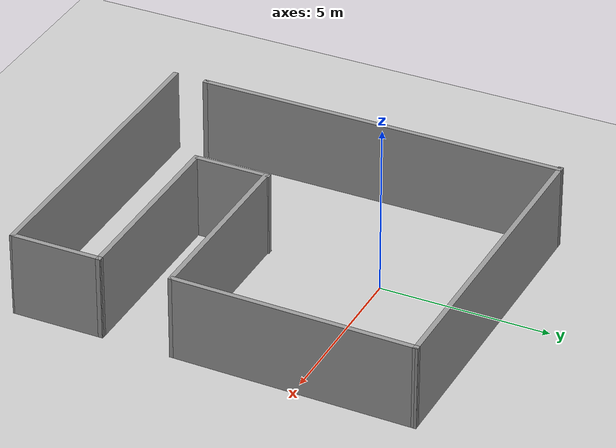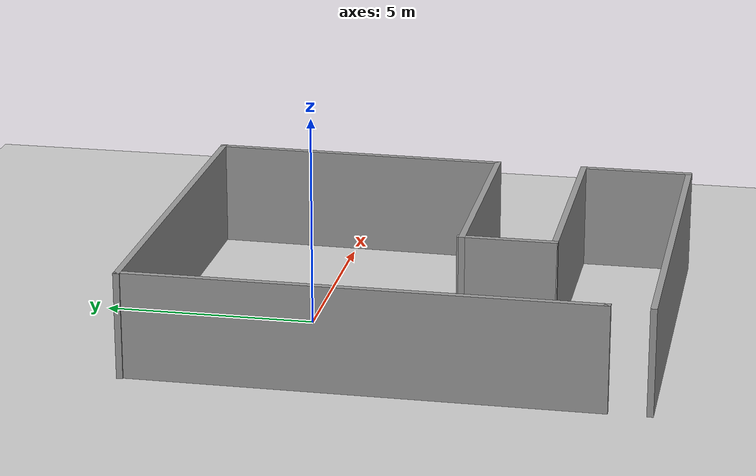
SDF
<sdf version="1.7">
 <world name="default">
  <model name="ground_plane">
   <static>1</static>
   <link name="link">
    <collision name="collision">
     <geometry><plane><normal>0 0 1</normal><size>100 100</size></plane></geometry>
     <surface><friction><ode><mu>100</mu><mu2>50</mu2></ode></friction></surface>
    </collision>
    <visual name="visual">
     <cast_shadows>0</cast_shadows>
     <geometry><plane><normal>0 0 1</normal><size>100 100</size></plane></geometry>
     <material>
      <script><uri>file://media/materials/scripts/gazebo.material</uri><name>Gazebo/Grey</name></script>
     </material>
    </visual>
   </link>
  </model>
  <light name="sun" type="directional">
   <pose>0 0 10 0 -0 0</pose>
   <diffuse>0.8 0.8 0.8 1</diffuse>
   <specular>0.2 0.2 0.2 1</specular>
   <attenuation>
    <range>1000</range>
    <constant>0.9</constant>
    <linear>0.01</linear>
    <quadratic>0.001</quadratic>
   </attenuation>
   <direction>-0.5 0.1 -0.9</direction>
   <spot><inner_angle>0</inner_angle><outer_angle>0</outer_angle><falloff>0</falloff></spot>
  </light>
  <scene><shadows>0</shadows><ambient>0.4 0.4 0.4 1</ambient><background>0.7 0.7 0.7 1</background></scene>
  <physics type="ode">
   <real_time_update_rate>1000</real_time_update_rate>
   <max_step_size>0.001</max_step_size>
   <real_time_factor>1</real_time_factor>
   <ode>
    <solver>
     <type>quick</type>
     <iters>150</iters>
     <precon_iters>0</precon_iters>
     <sor>1.4</sor>
     <use_dynamic_moi_rescaling>1</use_dynamic_moi_rescaling>
    </solver>
    <constraints>
     <cfm>1e-05</cfm>
     <erp>0.2</erp>
     <contact_max_correcting_vel>2000</contact_max_correcting_vel>
     <contact_surface_layer>0.01</contact_surface_layer>
    </constraints>
   </ode>
  </physics>
  <gravity>0 0 -9.8</gravity>
  <magnetic_field>6e-06 2.3e-05 -4.2e-05</magnetic_field>
  <atmosphere type="adiabatic"/>
  <spherical_coordinates>
   <surface_model>EARTH_WGS84</surface_model>
   <latitude_deg>0</latitude_deg>
   <longitude_deg>0</longitude_deg>
   <elevation>0</elevation>
   <heading_deg>0</heading_deg>
  </spherical_coordinates>
  <model name="rooms">
   <pose>0.648132 -2.41366 0 0 -0 0</pose>
   <link name="Wall_1">
    <collision name="Wall_1_Collision">
     <geometry><box><size>0.15 0.15 2.5</size></box></geometry>
     <pose>0 0 1.25 0 -0 0</pose>
    </collision>
    <visual name="Wall_1_Visual">
     <pose>0 0 1.25 0 -0 0</pose>
     <geometry><box><size>0.15 0.15 2.5</size></box></geometry>
     <material>
      <script><uri>file://media/materials/scripts/gazebo.material</uri><name>Gazebo/Grey</name></script>
      <ambient>1 1 1 1</ambient>
     </material>
    </visual>
    <pose>4.75175 5.87683 0 0 -0 0</pose>
   </link>
   <link name="Wall_10">
    <collision name="Wall_10_Collision">
     <geometry><box><size>0.15 0.15 2.5</size></box></geometry>
     <pose>0 0 1.25 0 -0 0</pose>
    </collision>
    <visual name="Wall_10_Visual">
     <pose>0 0 1.25 0 -0 0</pose>
     <geometry><box><size>0.15 0.15 2.5</size></box></geometry>
     <material>
      <script><uri>file://media/materials/scripts/gazebo.material</uri><name>Gazebo/Grey</name></script>
      <ambient>1 1 1 1</ambient>
     </material>
    </visual>
    <pose>-4.71225 5.92282 0 0 -0 0</pose>
   </link>
   <link name="Wall_12">
    <collision name="Wall_12_Collision">
     <geometry><box><size>9.61411 0.15 2.5</size></box></geometry>
     <pose>0 0 1.25 0 -0 0</pose>
    </collision>
    <visual name="Wall_12_Visual">
     <pose>0 0 1.25 0 -0 0</pose>
     <geometry><box><size>9.61411 0.15 2.5</size></box></geometry>
     <material>
      <script><uri>file://media/materials/scripts/gazebo.material</uri><name>Gazebo/Grey</name></script>
      <ambient>1 1 1 1</ambient>
     </material>
    </visual>
    <pose>-0.020481 5.89982 0 0 0 -0.00486</pose>
   </link>
   <link name="Wall_13">
    <collision name="Wall_13_Collision">
     <geometry><box><size>0.15 0.15 2.5</size></box></geometry>
     <pose>0 0 1.25 0 -0 0</pose>
    </collision>
    <visual name="Wall_13_Visual">
     <pose>0 0 1.25 0 -0 0</pose>
     <geometry><box><size>0.15 0.15 2.5</size></box></geometry>
     <material>
      <script><uri>file://media/materials/scripts/gazebo.material</uri><name>Gazebo/Grey</name></script>
      <ambient>1 1 1 1</ambient>
     </material>
    </visual>
    <pose>4.75175 5.87683 0 0 -0 0</pose>
   </link>
   <link name="Wall_15">
    <collision name="Wall_15_Collision">
     <geometry><box><size>5.75 0.15 2.5</size></box></geometry>
     <pose>0 0 1.25 0 -0 0</pose>
    </collision>
    <visual name="Wall_15_Visual">
     <pose>0 0 1.25 0 -0 0</pose>
     <geometry><box><size>5.75 0.15 2.5</size></box></geometry>
     <material>
      <script><uri>file://media/materials/scripts/gazebo.material</uri><name>Gazebo/Grey</name></script>
      <ambient>1 1 1 1</ambient>
     </material>
    </visual>
    <pose>1.84829 -1.17727 0 0 -0 3.14159</pose>
   </link>
   <link name="Wall_16">
    <collision name="Wall_16_Collision">
     <geometry><box><size>2.33649 0.15 2.5</size></box></geometry>
     <pose>0 0 1.25 0 -0 0</pose>
    </collision>
    <visual name="Wall_16_Visual">
     <pose>0 0 1.25 0 -0 0</pose>
     <geometry><box><size>2.33649 0.15 2.5</size></box></geometry>
     <material>
      <script><uri>file://media/materials/scripts/gazebo.material</uri><name>Gazebo/Grey</name></script>
      <ambient>1 1 1 1</ambient>
     </material>
    </visual>
    <pose>-0.951466 -2.23029 0 0 0 -1.57058</pose>
   </link>
   <link name="Wall_17">
    <collision name="Wall_17_Collision">
     <geometry><box><size>5.75 0.15 2.5</size></box></geometry>
     <pose>0 0 1.25 0 -0 0</pose>
    </collision>
    <visual name="Wall_17_Visual">
     <pose>0 0 1.25 0 -0 0</pose>
     <geometry><box><size>5.75 0.15 2.5</size></box></geometry>
     <material>
      <script><uri>file://media/materials/scripts/gazebo.material</uri><name>Gazebo/Grey</name></script>
      <ambient>1 1 1 1</ambient>
     </material>
    </visual>
    <pose>1.84878 -3.32353 0 0 -0 0</pose>
   </link>
   <link name="Wall_18">
    <collision name="Wall_18_Collision">
     <geometry><box><size>2.74964 0.15 2.5</size></box></geometry>
     <pose>0 0 1.25 0 -0 0</pose>
    </collision>
    <visual name="Wall_18_Visual">
     <pose>0 0 1.25 0 -0 0</pose>
     <geometry><box><size>2.74964 0.15 2.5</size></box></geometry>
     <material>
      <script><uri>file://media/materials/scripts/gazebo.material</uri><name>Gazebo/Grey</name></script>
      <ambient>1 1 1 1</ambient>
     </material>
    </visual>
    <pose>4.64853 -4.62335 0 0 0 -1.57098</pose>
   </link>
   <link name="Wall_19">
    <collision name="Wall_19_Collision">
     <geometry><box><size>9.5 0.15 2.5</size></box></geometry>
     <pose>0 0 1.25 0 -0 0</pose>
    </collision>
    <visual name="Wall_19_Visual">
     <pose>0 0 1.25 0 -0 0</pose>
     <geometry><box><size>9.5 0.15 2.5</size></box></geometry>
     <material>
      <script><uri>file://media/materials/scripts/gazebo.material</uri><name>Gazebo/Grey</name></script>
      <ambient>1 1 1 1</ambient>
     </material>
    </visual>
    <pose>-0.026708 -5.92317 0 0 -0 3.14159</pose>
   </link>
   <link name="Wall_22">
    <collision name="Wall_22_Collision">
     <geometry><box><size>11 0.15 2.5</size></box></geometry>
     <pose>0 0 1.25 0 -0 0</pose>
    </collision>
    <visual name="Wall_22_Visual">
     <pose>0 0 1.25 0 -0 0</pose>
     <geometry><box><size>11 0.15 2.5</size></box></geometry>
     <material>
      <script><uri>file://media/materials/scripts/gazebo.material</uri><name>Gazebo/Grey</name></script>
      <ambient>1 1 1 1</ambient>
     </material>
    </visual>
    <pose>-4.71225 0.497825 0 0 0 -1.5708</pose>
   </link>
   <link name="Wall_23">
    <collision name="Wall_23_Collision">
     <geometry><box><size>0.15 0.15 2.5</size></box></geometry>
     <pose>0 0 1.25 0 -0 0</pose>
    </collision>
    <visual name="Wall_23_Visual">
     <pose>0 0 1.25 0 -0 0</pose>
     <geometry><box><size>0.15 0.15 2.5</size></box></geometry>
     <material>
      <script><uri>file://media/materials/scripts/gazebo.material</uri><name>Gazebo/Grey</name></script>
      <ambient>1 1 1 1</ambient>
     </material>
    </visual>
    <pose>-4.71225 -4.92718 0 0 -0 0</pose>
   </link>
   <link name="Wall_3">
    <collision name="Wall_3_Collision">
     <geometry><box><size>7.16463 0.15 2.5</size></box></geometry>
     <pose>0 0 1.25 0 -0 0</pose>
    </collision>
    <visual name="Wall_3_Visual">
     <pose>0 0 1.25 0 -0 0</pose>
     <geometry><box><size>7.16463 0.15 2.5</size></box></geometry>
     <material>
      <script><uri>file://media/materials/scripts/gazebo.material</uri><name>Gazebo/Grey</name></script>
      <ambient>1 1 1 1</ambient>
     </material>
    </visual>
    <pose>4.70002 2.36989 0 0 0 -1.58554</pose>
   </link>
   <static>1</static>
  </model>
 </world>
</sdf>
